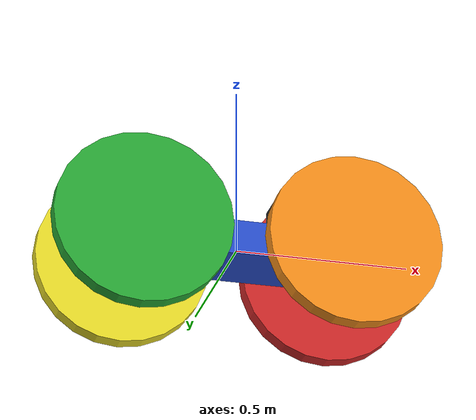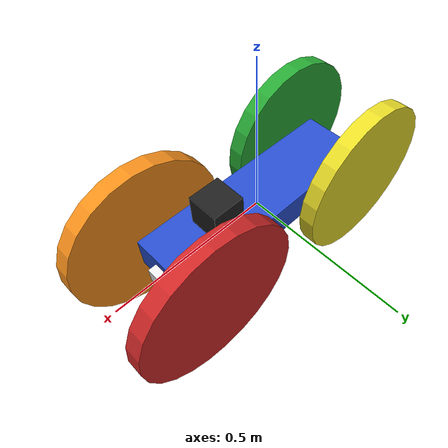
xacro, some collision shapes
<?xml version='1.0'?>

<robot name="my_robot" xmlns:xacro="http://www.ros.org/wiki/xacro">
<xacro:include filename="$(find my_robot)/urdf/my_robot.gazebo" />
  <link name="robot_footprint"></link>

  <joint name="robot_footprint_joint" type="fixed">
    <origin xyz="0 0 0" rpy="0 0 0" />
    <parent link="robot_footprint"/>
    <child link="chassis" />
  </joint>

  <link name='chassis'>
    <pose>0 0 0.25 0 0 0</pose>

    <inertial>
      <mass value="1.0"/>
      <origin xyz="0.0 0 0" rpy=" 0 0 0"/>
      <inertia
          ixx="0.1" ixy="0" ixz="0"
          iyy="0.1" iyz="0"
          izz="0.1"
      />
    </inertial>

    <collision name='collision'>
      <origin xyz="0 0 0" rpy=" 0 0 0"/>
      <geometry>
        <box size=".7 .2 .1"/>
      </geometry>
    </collision>

    <visual name='chassis_visual'>
      <origin xyz="0 0 0" rpy=" 0 0 0"/>
      <geometry>
        <box size=".7 .2 .1"/>
      </geometry>
    </visual>
  </link>

<link name='wheel_1'>
	<inertial>
		<mass value="1"/>
		<origin xyz="0 0 0" rpy="0 1.5707 1.5707"/>
		<inertia ixx="0.1" ixy="0" ixz="0" iyy="0.1" iyz="0" izz="0.1"/>
	</inertial>
	<collision name='wheel_1_collision'>
		<origin xyz="0 0 0" rpy="0 1.5707 1.5707"/>
		<geometry>
			<cylinder radius='0.249' length='0.05'/>
		</geometry>
	</collision>
	<visual>
		<origin xyz="0 0 0" rpy="0 1.5707 1.5707"/>
		<geometry>
			<cylinder radius='0.25' length='0.05'/>
		</geometry>
	</visual>
</link>

<link name='wheel_2'>
	<inertial>
		<mass value="1"/>
		<origin xyz="0 0 0" rpy="0 1.5707 1.5707"/>
		<inertia ixx="0.1" ixy="0" ixz="0" iyy="0.1" iyz="0" izz="0.1"/>
	</inertial>
	<collision name='wheel_2_collision'>
		<origin xyz="0 0 0" rpy="0 1.5707 1.5707"/>
		<geometry>
			<cylinder radius='0.249' length='0.05'/>
		</geometry>
	</collision>
	<visual>
		<origin xyz="0 0 0" rpy="0 1.5707 1.5707"/>
		<geometry>
			<cylinder radius='0.25' length='0.05'/>
		</geometry>
	</visual>
</link>

<link name='wheel_3'>
	<inertial>
		<mass value="1"/>
		<origin xyz="0 0 0" rpy="0 1.5707 1.5707"/>
		<inertia ixx="0.1" ixy="0" ixz="0" iyy="0.1" iyz="0" izz="0.1"/>
	</inertial>
	<collision name='wheel_3_collision'>
		<origin xyz="0 0 0" rpy="0 1.5707 1.5707"/>
		<geometry>
			<cylinder radius='0.249' length='0.05'/>
		</geometry>
	</collision>
	<visual>
		<origin xyz="0 0 0" rpy="0 1.5707 1.5707"/>
		<geometry>
			<cylinder radius='0.25' length='0.05'/>
		</geometry>
	</visual>
</link>

<link name='wheel_4'>
	<inertial>
		<mass value="1"/>
		<origin xyz="0 0 0" rpy="0 1.5707 1.5707"/>
		<inertia ixx="0.1" ixy="0" ixz="0" iyy="0.1" iyz="0" izz="0.1"/>
	</inertial>
	<collision name='wheel_4_collision'>
		<origin xyz="0 0 0" rpy="0 1.5707 1.5707"/>
		<geometry>
			<cylinder radius='0.249' length='0.05'/>
		</geometry>
	</collision>
	<visual>
		<origin xyz="0 0 0" rpy="0 1.5707 1.5707"/>
		<geometry>
			<cylinder radius='0.25' length='0.05'/>
		</geometry>
	</visual>
</link>

 <joint type="continuous" name="wheel_1_hinge">
    <origin xyz="0.3 0.15 0" rpy="0 0 0"/>
    <child link="wheel_1"/>
    <parent link="chassis"/>
    <axis xyz="0 1 0" rpy="0 0 0"/>
    <limit effort="10000" velocity="1000"/>
    <dynamics damping="1.0" friction="1.0"/>
  </joint>

 <joint type="continuous" name="wheel_2_hinge">
    <origin xyz="0.3 -0.15 0" rpy="0 0 0"/>
    <child link="wheel_2"/>
    <parent link="chassis"/>
    <axis xyz="0 1 0" rpy="0 0 0"/>
    <limit effort="10000" velocity="1000"/>
    <dynamics damping="1.0" friction="1.0"/>
  </joint>

 <joint type="continuous" name="wheel_3_hinge">
    <origin xyz="-0.3 0.15 0" rpy="0 0 0"/>
    <child link="wheel_3"/>
    <parent link="chassis"/>
    <axis xyz="0 1 0" rpy="0 0 0"/>
    <limit effort="10000" velocity="1000"/>
    <dynamics damping="1.0" friction="1.0"/>
  </joint>

 <joint type="continuous" name="wheel_4_hinge">
    <origin xyz="-0.3 -0.15 0" rpy="0 0 0"/>
    <child link="wheel_4"/>
    <parent link="chassis"/>
    <axis xyz="0 1 0" rpy="0 0 0"/>
    <limit effort="10000" velocity="1000"/>
    <dynamics damping="1.0" friction="1.0"/>
  </joint>

<link name='camera'>
	<inertial>
		<mass value="0.1"/>
		<origin xyz="0 0 0" rpy="0 0 0"/>
		<inertia ixx="1e-6" ixy="0" ixz="0" iyy="1e-6" iyz="0" izz="1e-6"/>
	</inertial>
	<collision name='camera_collision'>
		<origin xyz="0 0 0" rpy="0 0 0"/>
		<geometry>
			<box size="0.05 0.05 0.05"/>
		</geometry>
	</collision>
	<visual>
		<origin xyz="0 0 0" rpy="0 0 0"/>
		<geometry>
			<box size="0.05 0.05 0.05"/>
		</geometry>
	</visual>

</link>

<joint type="fixed" name='camera_joint'>
	<origin xyz="0.35 0 0" rpy="0 0 0"/>
	<child link="camera"/>
	<parent link="chassis"/>
	<axis xyz="0 1 0" rpy="0 0 0"/>
</joint>

<link name='hokuyo'>
	<visual>
		<origin xyz="0 0 0" rpy="0 0 0"/>
		<geometry>
			<mesh filename="package://my_robot/meshes/hokuyo.dae"/>
		</geometry>
	</visual>
	<collision>
		<origin xyz="0 0 0" rpy="0 0 0"/>
		<geometry>
			<box size="0.1 0.1 0.1"/>
		</geometry>
	</collision>
	<inertial>
		<mass value="1e-5"/>
		<origin xyz="0 0 0" rpy="0 0 0"/>
		<inertia ixx="1e-6" ixy="0" ixz="0" iyy="1e-6" iyz="0" izz="1e-6"/>
	</inertial>
</link>

<joint type="fixed" name="hokuyo_joint">
	<origin xyz=".15 0 .1" rpy="0 0 0"/>
	<axis xyz="0 1 0" rpy="0 0 0"/>
	<child link="hokuyo"/>
	<parent link="chassis"/>
</joint>

<gazebo reference="wheel_1">
    <material>Gazebo/Red</material>
</gazebo>
<gazebo reference="wheel_2">
    <material>Gazebo/Orange</material>
</gazebo>
<gazebo reference="wheel_3">
    <material>Gazebo/Yellow</material>
</gazebo>
<gazebo reference="wheel_4">
    <material>Gazebo/Green</material>
</gazebo>
<gazebo reference="chassis">
	<material>Gazebo/Blue</material>
</gazebo>
<gazebo reference="camera">
	<material>Gazebo/White</material>
</gazebo>
<gazebo reference="hokuyo">
	<material>Gazebo/Black</material>
</gazebo>

</robot>
